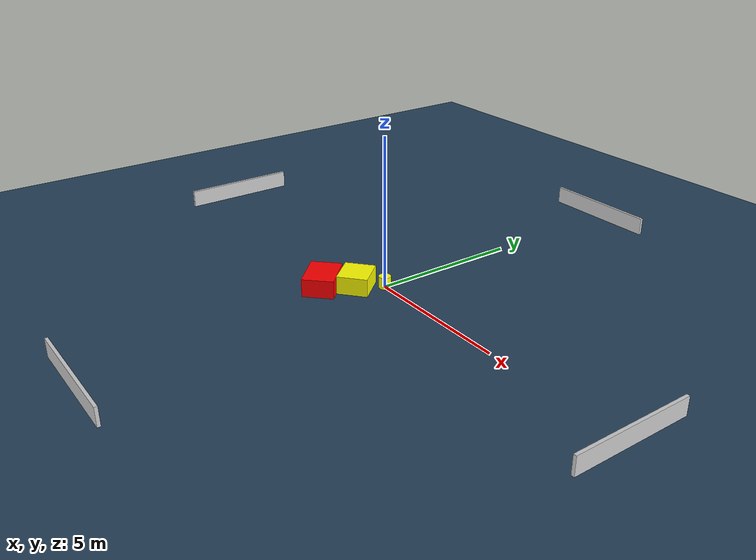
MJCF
<?xml version="1.0" ?>
<mujoco model="generated_environment">
  <option timestep="0.01" integrator="RK4" cone="elliptic"/>
  <default>
    <geom density="1"/>
  </default>
  <asset>
    <texture builtin="gradient" height="3072" name="skybox" rgb1="0.3 0.5 0.7" rgb2="0 0 0" type="skybox" width="512"/>
    <texture builtin="checker" height="300" name="groundplane" rgb1="0.2 0.3 0.4" rgb2="0.1 0.2 0.3" type="2d" width="300"/>
    <material name="groundplane" reflectance="0.2" texrepeat="5 5" texture="groundplane"/>
  </asset>
  <worldbody>
    <light dir="0 0 -1" directional="true" pos="0 0 1.5"/>
    <geom condim="3" friction="0.5 0.005 0.001" material="groundplane" name="floor" pos="0 0 0" size="0 0 0.05" type="plane"/>
    <body name="walls">
      <geom name="wall_1" condim="4" pos="-10.0 0.0 0.3" rgba="0.800000011920929 0.800000011920929 0.800000011920929 1.0" size="0.05 2.0 0.3" type="box"/>
      <geom name="wall_2" condim="4" pos="10.0 0.0 0.3" rgba="0.800000011920929 0.800000011920929 0.800000011920929 1.0" size="0.05 2.0 0.3" type="box"/>
      <geom name="wall_3" condim="4" pos="0.0 -10.0 0.3" rgba="0.800000011920929 0.800000011920929 0.800000011920929 1.0" size="2.0 0.05 0.3" type="box"/>
      <geom name="wall_4" condim="4" pos="0.0 10.0 0.3" rgba="0.800000011920929 0.800000011920929 0.800000011920929 1.0" size="2.0 0.05 0.3" type="box"/>
    </body>
    <body name="robot">
      <joint name="joint_x" type="slide" pos="0 0 0" axis="1 0 0"/>
      <joint name="joint_y" type="slide" pos="0 0 0" axis="0 1 0"/>
      <geom name="robot" type="cylinder" pos="0.0 0.0 0.2" size="0.2 0.2 0.0" mass="5.0" friction="1.0 0.005 0.0001" condim="4" rgba="1.0 1.0 0.0 1.0"/>
    </body>
    <body name="obstacle_1_movable">
      <geom name="obstacle_1_movable" condim="4" pos="-0.48481525674416553 -0.7717009620367323 0.3" euler="0 0 220.81906252313502" friction="0.0 0.005 0.001" rgba="1.0 1.0 0.0 1.0" size="0.5040895279432355 0.5417886416129327 0.3" type="box" mass="0.1"/>
      <joint type="free"/>
    </body>
    <body name="obstacle_2_static">
      <geom name="obstacle_2_static" condim="4" pos="-1.0983629965493218 -1.6606247479603846 0.3" euler="0 0 225.04632024678637" friction="0.0 0.005 0.001" rgba="1.0 0.0 0.0 1.0" size="0.5175008861145323 0.6776680993526782 0.3" type="box"/>
    </body>
  </worldbody>
  <actuator>
    <motor name="actuator_x" joint="joint_x" gear="1" ctrlrange="-1 1"/>
    <motor name="actuator_y" joint="joint_y" gear="1" ctrlrange="-1 1"/>
  </actuator>
</mujoco>
